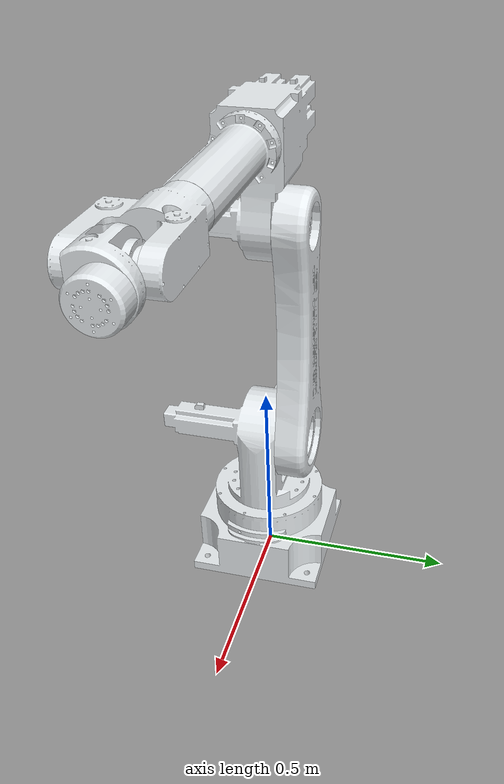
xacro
<?xml version="1.0"?>
<robot xmlns:xacro="http://www.ros.org/wiki/xacro" name="FUMTI">
    <xacro:arg name="initial_positions_file" default="initial_positions.yaml" />

    <!-- Import FUMTI urdf file -->
    <xacro:include filename="$(find fumti)/urdf/FUMTI.urdf.xacro" />

    <!-- Import control_xacro -->
    <xacro:include filename="FUMTI.ros2_control.xacro" />

    <xacro:FUMTI_ros2_control name="FakeSystem" initial_positions_file="$(arg initial_positions_file)"/>

</robot>

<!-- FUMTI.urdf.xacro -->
<robot
  name="FUMTI">
  <link name= "world" />

  <joint name= "worldJ0" type="fixed">
      <origin xyz="0 0 0" rpy="0 0 0" />
      <parent
      link="world" />
    <child
      link="6RL0" />
    <dynamics damping="10" friction="1.0"/>
  </joint>
  <link
    name="6RL0">
    <inertial>
      <origin
        xyz="0.003 0 -0.005"
        rpy="0 0 0" />
      <mass
        value="1.781" />
      <inertia
        ixx="0.376"
        ixy="0"
        ixz="-0.001"
        iyy="0.364"
        iyz="0"
        izz="0.65" />
    </inertial>
    <visual>
      <origin
        xyz="0 0 0"
        rpy="0 0 0" />
      <geometry>
        <mesh
          filename="file:///home/arya/moveit2_ws/src/fumti/meshes/6RL0.STL" />
      </geometry>
      <material
        name="">
        <color
          rgba="0.89804 0.91765 0.92941 1" />
      </material>
    </visual>
    <collision>
      <origin
        xyz="0 0 0"
        rpy="0 0 0" />
      <geometry>
        <mesh
          filename="file:///home/arya/moveit2_ws/src/fumti/meshes/6RL0.STL" />
      </geometry>
    </collision>
  </link>
  <link name="6RL1">
    <inertial>
      <origin
        xyz="-0.016 -0.02 0.195"
        rpy="0 0 0" />
      <mass
        value="0.923" />
      <inertia
        ixx="0.557"
        ixy="-0.009"
        ixz="-0.018"
        iyy="0.601"
        iyz="-0.076"
        izz="0.362" />
    </inertial>
    <visual>
      <origin
        xyz="0 0 0"
        rpy="0 0 0" />
      <geometry>
        <mesh
          filename="file:///home/arya/moveit2_ws/src/fumti/meshes/6RL1.STL" />
      </geometry>
      <material
        name="">
        <color
          rgba="0.89804 0.91765 0.92941 1" />
      </material>
    </visual>
    <collision>
      <origin
        xyz="0 0 0"
        rpy="0 0 0" />
      <geometry>
        <mesh
          filename="file:///home/arya/moveit2_ws/src/fumti/meshes/6RL1.STL" />
      </geometry>
    </collision>
  </link>
  <joint name="6RJ1" type="revolute">
    <origin
      xyz="0 0 0.0635"
      rpy="0 0 0" />
    <parent
      link="6RL0" />
    <child
      link="6RL1" />
    <axis
      xyz="0 0 1" />
    <limit
      lower="-10"
      upper="10"
      effort="-1"
      velocity="-1" />
      <dynamics damping="10" friction="1.0"/>
  </joint>
  <link name="6RL2">
    <inertial>
      <origin
        xyz="0.183 0 0.082"
        rpy="0 0 0" />
      <mass
        value="0.89" />
      <inertia
        ixx="0.067"
        ixy="0"
        ixz="0.044"
        iyy="1"
        iyz="0"
        izz="1.034" />
    </inertial>
    <visual>
      <origin
        xyz="0 0 0"
        rpy="0 0 0" />
      <geometry>
        <mesh
          filename="file:///home/arya/moveit2_ws/src/fumti/meshes/6RL2.STL" />
      </geometry>
      <material
        name="">
        <color
          rgba="0.89804 0.91765 0.92941 1" />
      </material>
    </visual>
    <collision>
      <origin
        xyz="0 0 0"
        rpy="0 0 0" />
      <geometry>
        <mesh
          filename="file:///home/arya/moveit2_ws/src/fumti/meshes/6RL2.STL" />
      </geometry>
    </collision>
  </link>
  <joint name="6RJ2" type="revolute">
    <origin
      xyz="0 0 0.326"
      rpy="4.7124 -1.5708 0" />
    <parent
      link="6RL1" />
    <child
      link="6RL2" />
    <axis
      xyz="0 0 1" />
    <limit
      lower="-10"
      upper="10"
      effort="-1"
      velocity="-1" />
      <dynamics damping="10" friction="1.0"/>
  </joint>
  <link name="6RL3">
    <inertial>
      <origin
        xyz="0.128 0.002 -0.003"
        rpy="0 0 0" />
      <mass
        value="0.16" />
      <inertia
        ixx="0.618"
        ixy="-0.007"
        ixz="0.019"
        iyy="0.331"
        iyz="-0.005"
        izz="0.791" />
    </inertial>
    <visual>
      <origin
        xyz="0 0 0"
        rpy="0 0 0" />
      <geometry>
        <mesh
          filename="file:///home/arya/moveit2_ws/src/fumti/meshes/6RL3.STL" />
      </geometry>
      <material
        name="">
        <color
          rgba="0.89804 0.91765 0.92941 1" />
      </material>
    </visual>
    <collision>
      <origin
        xyz="0 0 0"
        rpy="0 0 0" />
      <geometry>
        <mesh
          filename="file:///home/arya/moveit2_ws/src/fumti/meshes/6RL3.STL" />
      </geometry>
    </collision>
  </link>
  <joint name="6RJ3" type="revolute">
    <origin
      xyz="0.6 0 0"
      rpy="0 0 0" />
    <parent
      link="6RL2" />
    <child
      link="6RL3" />
    <axis
      xyz="0 0 1" />
    <limit
      lower="-10"
      upper="10"
      effort="-1"
      velocity="-1" />
      <dynamics damping="10" friction="1.0"/>
  </joint>
  <link name="6RL4">
    <inertial>
      <origin
        xyz="0 0.015 0.562"
        rpy="0 0 0" />
      <mass
        value="0.0742" />
      <inertia
        ixx="0.04"
        ixy="0"
        ixz="0"
        iyy="0.032"
        iyz="0.004"
        izz="0.018" />
    </inertial>
    <visual>
      <origin
        xyz="0 0 0"
        rpy="0 0 0" />
      <geometry>
        <mesh
          filename="file:///home/arya/moveit2_ws/src/fumti/meshes/6RL4.STL" />
      </geometry>
      <material
        name="">
        <color
          rgba="0.89804 0.91765 0.92941 1" />
      </material>
    </visual>
    <collision>
      <origin
        xyz="0 0 0"
        rpy="0 0 0" />
      <geometry>
        <mesh
          filename="file:///home/arya/moveit2_ws/src/fumti/meshes/6RL4.STL" />
      </geometry>
    </collision>
  </link>
  <joint name="6RJ4" type="revolute">
    <origin
      xyz="0.2 0 0"
      rpy="-1.5708 0 0" />
    <parent
      link="6RL3" />
    <child
      link="6RL4" />
    <axis
      xyz="0 0 1" />
    <limit
      lower="-10"
      upper="10"
      effort="-1"
      velocity="-1" />
      <dynamics damping="10" friction="1.0"/>
  </joint>
  <link name="6RL5">
    <inertial>
      <origin
        xyz="-0.003 0.02 -0.013"
        rpy="0 0 0" />
      <mass
        value="0.0615" />
      <inertia
        ixx="0.007"
        ixy="0"
        ixz="0"
        iyy="0.006"
        iyz="0"
        izz="0.008" />
    </inertial>
    <visual>
      <origin
        xyz="0 0 0"
        rpy="0 0 0" />
      <geometry>
        <mesh
          filename="file:///home/arya/moveit2_ws/src/fumti/meshes/6RL5.STL" />
      </geometry>
      <material
        name="">
        <color
          rgba="0.89804 0.91765 0.92941 1" />
      </material>
    </visual>
    <collision>
      <origin
        xyz="0 0 0"
        rpy="0 0 0" />
      <geometry>
        <mesh
          filename="file:///home/arya/moveit2_ws/src/fumti/meshes/6RL5.STL" />
      </geometry>
    </collision>
  </link>
  <joint name="6RJ5" type="revolute">
    <origin
      xyz="0 0 0.6855"
      rpy="1.5708 0 0" />
    <parent
      link="6RL4" />
    <child
      link="6RL5" />
    <axis
      xyz="0 0 1" />
    <limit
      lower="-10"
      upper="10"
      effort="-1"
      velocity="-1" />
      <dynamics damping="10" friction="1.0"/>
  </joint>
  <link name="end">
    <inertial>
      <origin
        xyz="0 0 0.29"
        rpy="0 0 0" />
      <mass
        value="0.00955" />
      <inertia
        ixx="0.001"
        ixy="0"
        ixz="0"
        iyy="0.001"
        iyz="0"
        izz="0.001" />
    </inertial>
    <visual>
      <origin
        xyz="0 0 0"
        rpy="0 0 0" />
      <geometry>
        <mesh
          filename="file:///home/arya/moveit2_ws/src/fumti/meshes/6RL6.STL" />
      </geometry>
      <material
        name="">
        <color
          rgba="0.89804 0.91765 0.92941 1" />
      </material>
    </visual>
    <collision>
      <origin
        xyz="0 0 0"
        rpy="0 0 0" />
      <geometry>
        <mesh
          filename="file:///home/arya/moveit2_ws/src/fumti/meshes/6RL6.STL" />
      </geometry>
    </collision>
  </link>
  <joint name="6RJ6" type="revolute">
    <origin
      xyz="0 0.079 0"
      rpy="-1.5708 0 0" />
    <parent
      link="6RL5" />
    <child
      link="end" />
    <axis
      xyz="0 0 1" />
    <limit
      lower="-10"
      upper="10"
      effort="-1"
      velocity="-1" />
      <dynamics damping="10" friction="1.0"/>
  </joint>

  <link name="camera_link">

    <inertial>
      <mass value="1e-5" />
      <origin xyz="0 0 0" rpy="0 0 0"/>
      <inertia ixx="1e-6" ixy="0" ixz="0" iyy="1e-6" iyz="0" izz="1e-6" />
    </inertial>
  </link>

  <joint name="camera_joint" type="fixed">
    <axis xyz="0 0 0" />
    <origin xyz="0.1 0 0" rpy="3.14 -1.57 0"/>
    <parent link="end"/>
    <child link="camera_link"/>
  </joint>

  <gazebo reference="camera_link">
    <sensor type="camera" name="camera1">
      <update_rate>30.0</update_rate>
      <camera name="head">
        <image>
          <width>800</width>
          <height>800</height>
          <format>R8G8B8</format>
        </image>

        <clip>
          <near>0.02</near>
          <far>300</far>
        </clip>
        <noise>
          <type>gaussian</type>
          <!-- Noise is sampled independently per pixel on each frame.
               That pixel's noise value is added to each of its color
               channels, which at that point lie in the range [0,1]. -->
          <mean>0.0</mean>
          <stddev>0.007</stddev>
        </noise>
      </camera>
      <plugin name="gz::sim::systems::Sensors" filename="gz-sim-sensors-system">
        <alwaysOn>true</alwaysOn>
        <updateRate>0.0</updateRate>
        <cameraName>fumti/camera1</cameraName>
        <imageTopicName>image_raw</imageTopicName>
        <cameraInfoTopicName>camera_info</cameraInfoTopicName>
        <frameName>camera_link</frameName>
        <hackBaseline>0.07</hackBaseline>
        <distortionK1>0.0</distortionK1>
        <distortionK2>0.0</distortionK2>
        <distortionK3>0.0</distortionK3>
        <distortionT1>0.0</distortionT1>
        <distortionT2>0.0</distortionT2>
      </plugin>
    </sensor>
  </gazebo>

<ros2_control name="GazeboSystem" type="system">
  <hardware>
    <plugin>gz_ros2_control/GazeboSimSystem</plugin>
  </hardware>
  <joint name="6RJ1">
    <command_interface name="position">
      <param name="min">-1e6</param>
      <param name="max">1e6</param>
    </command_interface>
    <state_interface name="position">
      <param name="initial_value">0</param>
    </state_interface>
    <state_interface name="velocity"/>
  </joint>

  <joint name="6RJ2">
    <command_interface name="position">
      <param name="min">-1e6</param>
      <param name="max">1e6</param>
    </command_interface>
    <state_interface name="position">
      <param name="initial_value">0</param>
    </state_interface>
    <state_interface name="velocity"/>
  </joint>

  <joint name="6RJ3">
    <command_interface name="position">
      <param name="min">-1e6</param>
      <param name="max">1e6</param>
    </command_interface>
    <state_interface name="position">
      <param name="initial_value">0</param>
    </state_interface>
    <state_interface name="velocity"/>
  </joint>

  <joint name="6RJ4">
    <command_interface name="position">
      <param name="min">-10</param>
      <param name="max">10</param>
    </command_interface>
    <state_interface name="position">
      <param name="initial_value">0</param>
    </state_interface>
    <state_interface name="velocity"/>
  </joint>

  <joint name="6RJ5">
    <command_interface name="position">
      <param name="min">-10</param>
      <param name="max">10</param>
    </command_interface>
    <state_interface name="position">
      <param name="initial_value">0</param>
    </state_interface>
    <state_interface name="velocity"/>
  </joint>

  <joint name="6RJ6">
    <command_interface name="position">
      <param name="min">-10</param>
      <param name="max">10</param>
    </command_interface>
    <state_interface name="position">
      <param name="initial_value">0</param>
    </state_interface>
    <state_interface name="velocity"/>
  </joint>
</ros2_control>

<gazebo>
  <plugin name="gz_ros2_control::GazeboSimROS2ControlPlugin" filename="gz_ros2_control-system">
    <parameters>/home/arya/moveit2_ws/src/fumti_config/config/ros2_controllers_gz.yaml</parameters>
    <controller_manager_prefix_node_name>controller_manager</controller_manager_prefix_node_name>
  </plugin>
</gazebo>

</robot>
